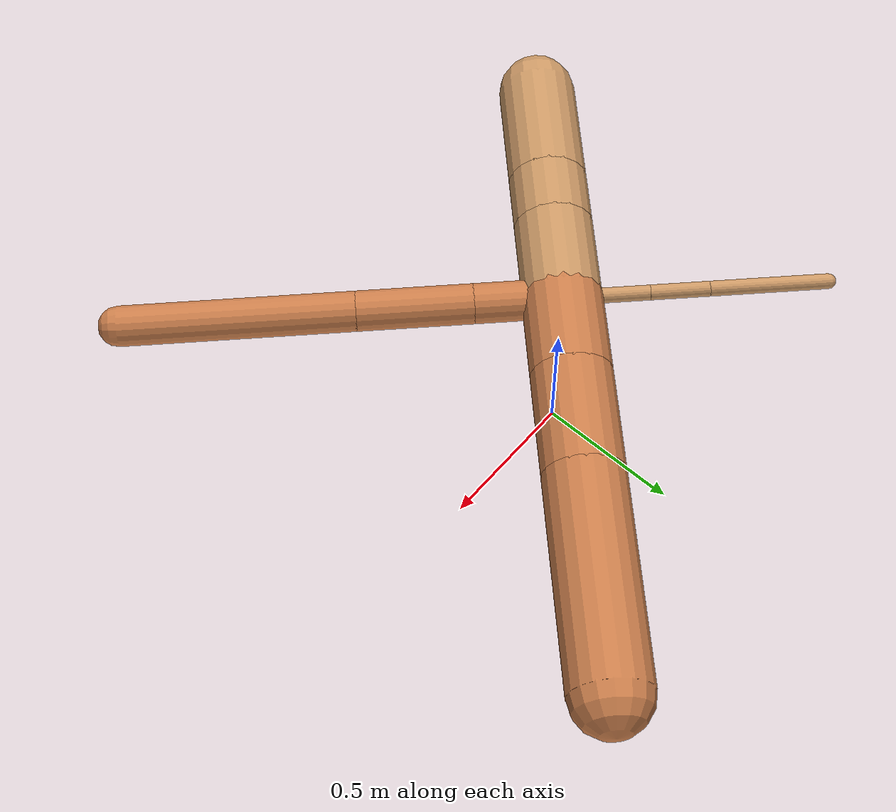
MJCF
<?xml version="1.0" ?>
<mujoco model="ant">

	<compiler angle="degree" coordinate="local" inertiafromgeom="true"/>

	<option integrator="RK4" timestep="0.01"/>

	<custom>

		<numeric data="0.0 0.0 0.55 1.0 0.0 0.0 0.0 0.0 1.0 0.0 -1.0 0.0 -1.0 0.0 1.0" name="init_qpos"/>

	</custom>

	<default>

		<joint armature="1" damping="1" limited="true"/>

		<geom conaffinity="0" condim="3" density="5.0" friction="1.5 0.1 0.1" margin="0.01" rgba="0.8 0.6 0.4 1"/>

	</default>

	<worldbody>

		<body name="torso" pos="0 0 0.75">

			<geom name="torso_geom" pos="0 0 0" size="0.09597087891282771" type="sphere"/>

			<!--joint armature="0" damping="0" limited="false" margin="0.01" name="root" pos="0 0 0" type="free"/-->

			<body name="front_left_leg" pos="0 0 0">

				<geom fromto="0 0 0 0.2 0.2 0" name="aux_1_geom" size="0.1310467234427043" type="capsule" rgba=".8 .5 .3 1"/>

				<body name="aux_1" pos="0.2 0.2 0">

					<joint axis="0 0 1" name="hip_1" pos="0.0 0.0 0.0" range="-40 40" type="hinge"/>

					<geom fromto="0 0 0 0.24697659061798785 0.24697659061798785 0" name="left_leg_geom" size="0.1310467234427043" type="capsule" rgba=".8 .5 .3 1"/>

					<body pos="0.24697659061798785 0.24697659061798785 0" name="front_left_foot">

						<joint axis="-1 1 0" name="ankle_1" pos="0.0 0.0 0.0" range="30 100" type="hinge"/>

						<geom fromto="0 0 0 0.4939531812359757 0.4939531812359757 0" name="left_ankle_geom" size="0.1310467234427043" type="capsule" rgba=".8 .5 .3 1"/>

					</body>

				</body>

			</body>

			<body name="front_right_leg" pos="0 0 0">

				<geom fromto="0 0 0 -0.2 0.2 0" name="aux_2_geom" size="0.024779671129124898" type="capsule"/>

				<body name="aux_2" pos="-0.2 0.2 0">

					<joint axis="0 0 1" name="hip_2" pos="0.0 0.0 0.0" range="-40 40" type="hinge"/>

					<geom fromto="0 0 0 -0.1359408365380334 0.1359408365380334 0" name="right_leg_geom" size="0.024779671129124898" type="capsule"/>

					<body pos="-0.1359408365380334 0.1359408365380334 0" name="front_right_foot">

						<joint axis="1 1 0" name="ankle_2" pos="0.0 0.0 0.0" range="-100 -30" type="hinge"/>

						<geom fromto="0 0 0 -0.2718816730760668 0.2718816730760668 0" name="right_ankle_geom" size="0.024779671129124898" type="capsule"/>

					</body>

				</body>

			</body>

			<body name="left_back_leg" pos="0 0 0">

				<geom fromto="0 0 0 -0.2 -0.2 0" name="aux_3_geom" size="0.12900986114760815" type="capsule"/>

				<body name="aux_3" pos="-0.2 -0.2 0">

					<joint axis="0 0 1" name="hip_3" pos="0.0 0.0 0.0" range="-40 40" type="hinge"/>

					<geom fromto="0 0 0 -0.13228624606702813 -0.13228624606702813 0" name="back_leg_geom" size="0.12900986114760815" type="capsule"/>

					<body pos="-0.13228624606702813 -0.13228624606702813 0" name="left_back_foot">

						<joint axis="-1 1 0" name="ankle_3" pos="0.0 0.0 0.0" range="-100 -30" type="hinge"/>

						<geom fromto="0 0 0 -0.26457249213405626 -0.26457249213405626 0" name="third_ankle_geom" size="0.12900986114760815" type="capsule"/>

					</body>

				</body>

			</body>

			<body name="right_back_leg" pos="0 0 0">

				<geom fromto="0 0 0 0.2 -0.2 0" name="aux_4_geom" size="0.06515929523255407" type="capsule" rgba=".8 .5 .3 1"/>

				<body name="aux_4" pos="0.2 -0.2 0">

					<joint axis="0 0 1" name="hip_4" pos="0.0 0.0 0.0" range="-40 40" type="hinge"/>

					<geom fromto="0 0 0 0.2655361892842802 -0.2655361892842802 0" name="rightback_leg_geom" size="0.06515929523255407" type="capsule" rgba=".8 .5 .3 1"/>

					<body pos="0.2655361892842802 -0.2655361892842802 0" name="right_back_foot">

						<joint axis="1 1 0" name="ankle_4" pos="0.0 0.0 0.0" range="30 100" type="hinge"/>

						<geom fromto="0 0 0 0.5310723785685604 -0.5310723785685604 0" name="fourth_ankle_geom" size="0.06515929523255407" type="capsule" rgba=".8 .5 .3 1"/>

					</body>

				</body>

			</body>

		</body>

	</worldbody>

	<actuator>

		<motor ctrllimited="true" ctrlrange="-1.0 1.0" joint="hip_4" gear="150"/>

		<motor ctrllimited="true" ctrlrange="-1.0 1.0" joint="ankle_4" gear="150"/>

		<motor ctrllimited="true" ctrlrange="-1.0 1.0" joint="hip_1" gear="150"/>

		<motor ctrllimited="true" ctrlrange="-1.0 1.0" joint="ankle_1" gear="150"/>

		<motor ctrllimited="true" ctrlrange="-1.0 1.0" joint="hip_2" gear="150"/>

		<motor ctrllimited="true" ctrlrange="-1.0 1.0" joint="ankle_2" gear="150"/>

		<motor ctrllimited="true" ctrlrange="-1.0 1.0" joint="hip_3" gear="150"/>

		<motor ctrllimited="true" ctrlrange="-1.0 1.0" joint="ankle_3" gear="150"/>

	</actuator>

</mujoco>
